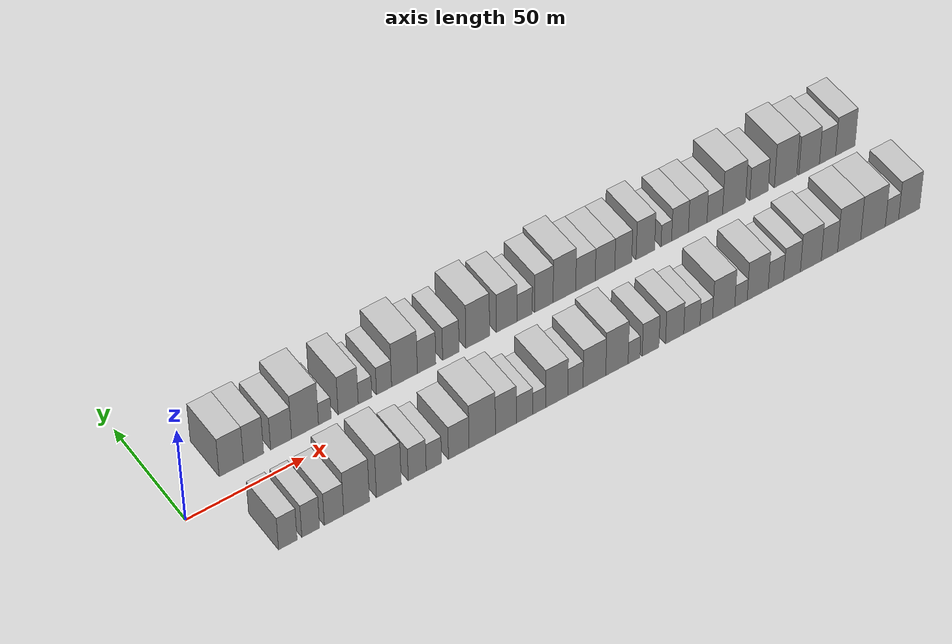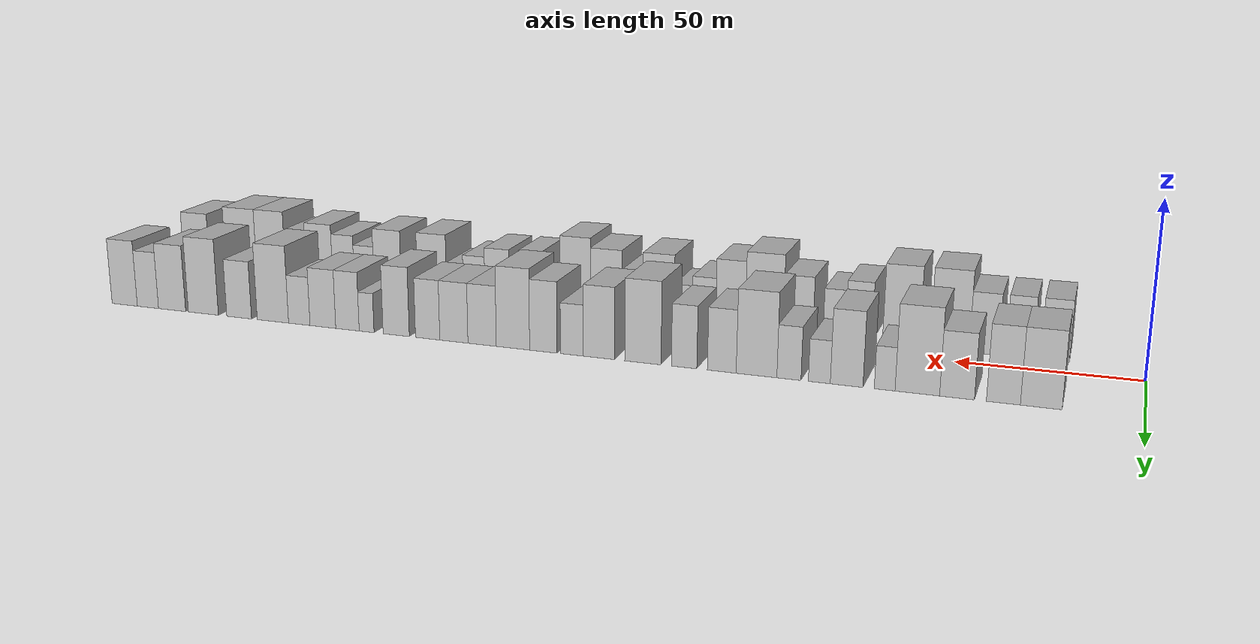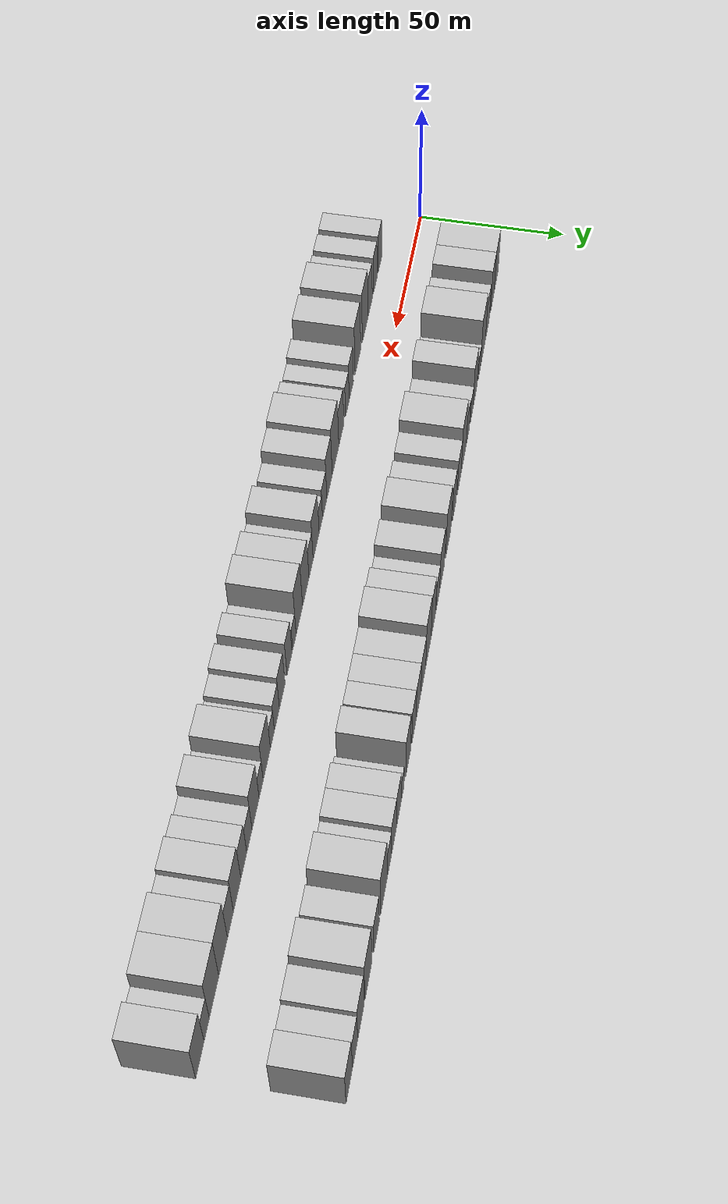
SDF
<sdf version="1.6">
 <world name="default">
  <scene>
   <sky><clouds><speed>12</speed></clouds></sky>
   <ambient>0.4 0.4 0.4 1</ambient>
   <background>0.7 0.7 0.7 1</background>
   <shadows>1</shadows>
  </scene>
  <gravity>0 0 -9.8066</gravity>
  <magnetic_field>6e-06 2.3e-05 -4.2e-05</magnetic_field>
  <physics default="0" name="default_physics" type="ode">
   <ode>
    <solver>
     <type>quick</type>
     <iters>10</iters>
     <sor>1.0</sor>
     <use_dynamic_moi_rescaling>0</use_dynamic_moi_rescaling>
    </solver>
    <constraints>
     <cfm>0</cfm>
     <erp>0.2</erp>
     <contact_max_correcting_vel>100</contact_max_correcting_vel>
     <contact_surface_layer>0.001</contact_surface_layer>
    </constraints>
   </ode>
   <max_step_size>0.004</max_step_size>
   <real_time_factor>1</real_time_factor>
   <real_time_update_rate>250</real_time_update_rate>
  </physics>
  <light name="sun" type="directional">
   <pose>0 0 10 0 0 0</pose>
   <diffuse>0.8 0.8 0.8 1</diffuse>
   <specular>0.2 0.2 0.2 1</specular>
   <attenuation>
    <range>1000</range>
    <constant>0.9</constant>
    <linear>0.01</linear>
    <quadratic>0.001</quadratic>
   </attenuation>
   <direction>-0.5 0.1 -0.9</direction>
  </light>
  <model name="building_1">
   <static>1</static>
   <pose>25.1516 20.0000 0 0.000000 0.000000 1.570796</pose>
   <link name="link">
    <pose>0 0 10.50 0 0 0</pose>
    <collision name="collision"><geometry><box><size>20.0000 10.3033 21.0000</size></box></geometry></collision>
    <visual name="visual">
     <cast_shadows>0</cast_shadows>
     <geometry><box><size>20.0000 10.3033 21.0000</size></box></geometry>
     <material>
      <script>
       <uri>model://HANNAS_wall/materials/scripts</uri>
       <uri>model://HANNAS_wall/materials/textures</uri>
       <name>vrc/HANNAS_wall</name>
      </script>
     </material>
    </visual>
   </link>
  </model>
  <model name="building_2">
   <static>1</static>
   <pose>34.5574 20.0000 0 0.000000 0.000000 1.570796</pose>
   <link name="link">
    <pose>0 0 10.50 0 0 0</pose>
    <collision name="collision"><geometry><box><size>20.0000 8.5082 21.0000</size></box></geometry></collision>
    <visual name="visual">
     <cast_shadows>0</cast_shadows>
     <geometry><box><size>20.0000 8.5082 21.0000</size></box></geometry>
     <material>
      <script>
       <uri>model://HANNAS_wall/materials/scripts</uri>
       <uri>model://HANNAS_wall/materials/textures</uri>
       <name>vrc/HANNAS_wall</name>
      </script>
     </material>
    </visual>
   </link>
  </model>
  <model name="building_3">
   <static>1</static>
   <pose>46.2636 20.0000 0 0.000000 0.000000 1.570796</pose>
   <link name="link">
    <pose>0 0 9.00 0 0 0</pose>
    <collision name="collision"><geometry><box><size>20.0000 8.9044 18.0000</size></box></geometry></collision>
    <visual name="visual">
     <cast_shadows>0</cast_shadows>
     <geometry><box><size>20.0000 8.9044 18.0000</size></box></geometry>
     <material>
      <script>
       <uri>model://HANNAS_wall/materials/scripts</uri>
       <uri>model://HANNAS_wall/materials/textures</uri>
       <name>vrc/HANNAS_wall</name>
      </script>
     </material>
    </visual>
   </link>
  </model>
  <model name="building_4">
   <static>1</static>
   <pose>56.4944 20.0000 0 0.000000 0.000000 1.570796</pose>
   <link name="link">
    <pose>0 0 12.00 0 0 0</pose>
    <collision name="collision"><geometry><box><size>20.0000 11.5572 24.0000</size></box></geometry></collision>
    <visual name="visual">
     <cast_shadows>0</cast_shadows>
     <geometry><box><size>20.0000 11.5572 24.0000</size></box></geometry>
     <material>
      <script>
       <uri>model://HANNAS_wall/materials/scripts</uri>
       <uri>model://HANNAS_wall/materials/textures</uri>
       <name>vrc/HANNAS_wall</name>
      </script>
     </material>
    </visual>
   </link>
  </model>
  <model name="building_5">
   <static>1</static>
   <pose>65.0011 20.0000 0 0.000000 0.000000 1.570796</pose>
   <link name="link">
    <pose>0 0 6.00 0 0 0</pose>
    <collision name="collision"><geometry><box><size>20.0000 5.4563 12.0000</size></box></geometry></collision>
    <visual name="visual">
     <cast_shadows>0</cast_shadows>
     <geometry><box><size>20.0000 5.4563 12.0000</size></box></geometry>
     <material>
      <script>
       <uri>model://HANNAS_wall/materials/scripts</uri>
       <uri>model://HANNAS_wall/materials/textures</uri>
       <name>vrc/HANNAS_wall</name>
      </script>
     </material>
    </visual>
   </link>
  </model>
  <model name="building_6">
   <static>1</static>
   <pose>75.0947 20.0000 0 0.000000 0.000000 1.570796</pose>
   <link name="link">
    <pose>0 0 10.50 0 0 0</pose>
    <collision name="collision"><geometry><box><size>20.0000 8.7310 21.0000</size></box></geometry></collision>
    <visual name="visual">
     <cast_shadows>0</cast_shadows>
     <geometry><box><size>20.0000 8.7310 21.0000</size></box></geometry>
     <material>
      <script>
       <uri>model://HANNAS_wall/materials/scripts</uri>
       <uri>model://HANNAS_wall/materials/textures</uri>
       <name>vrc/HANNAS_wall</name>
      </script>
     </material>
    </visual>
   </link>
  </model>
  <model name="building_7">
   <static>1</static>
   <pose>82.4263 20.0000 0 0.000000 0.000000 1.570796</pose>
   <link name="link">
    <pose>0 0 6.00 0 0 0</pose>
    <collision name="collision"><geometry><box><size>20.0000 5.9321 12.0000</size></box></geometry></collision>
    <visual name="visual">
     <cast_shadows>0</cast_shadows>
     <geometry><box><size>20.0000 5.9321 12.0000</size></box></geometry>
     <material>
      <script>
       <uri>model://HANNAS_wall/materials/scripts</uri>
       <uri>model://HANNAS_wall/materials/textures</uri>
       <name>vrc/HANNAS_wall</name>
      </script>
     </material>
    </visual>
   </link>
  </model>
  <model name="building_8">
   <static>1</static>
   <pose>90.7004 20.0000 0 0.000000 0.000000 1.570796</pose>
   <link name="link">
    <pose>0 0 7.50 0 0 0</pose>
    <collision name="collision"><geometry><box><size>20.0000 6.6161 15.0000</size></box></geometry></collision>
    <visual name="visual">
     <cast_shadows>0</cast_shadows>
     <geometry><box><size>20.0000 6.6161 15.0000</size></box></geometry>
     <material>
      <script>
       <uri>model://HANNAS_wall/materials/scripts</uri>
       <uri>model://HANNAS_wall/materials/textures</uri>
       <name>vrc/HANNAS_wall</name>
      </script>
     </material>
    </visual>
   </link>
  </model>
  <model name="building_9">
   <static>1</static>
   <pose>99.6663 20.0000 0 0.000000 0.000000 1.570796</pose>
   <link name="link">
    <pose>0 0 12.00 0 0 0</pose>
    <collision name="collision"><geometry><box><size>20.0000 11.3157 24.0000</size></box></geometry></collision>
    <visual name="visual">
     <cast_shadows>0</cast_shadows>
     <geometry><box><size>20.0000 11.3157 24.0000</size></box></geometry>
     <material>
      <script>
       <uri>model://HANNAS_wall/materials/scripts</uri>
       <uri>model://HANNAS_wall/materials/textures</uri>
       <name>vrc/HANNAS_wall</name>
      </script>
     </material>
    </visual>
   </link>
  </model>
  <model name="building_10">
   <static>1</static>
   <pose>109.3915 20.0000 0 0.000000 0.000000 1.570796</pose>
   <link name="link">
    <pose>0 0 9.00 0 0 0</pose>
    <collision name="collision"><geometry><box><size>20.0000 8.1346 18.0000</size></box></geometry></collision>
    <visual name="visual">
     <cast_shadows>0</cast_shadows>
     <geometry><box><size>20.0000 8.1346 18.0000</size></box></geometry>
     <material>
      <script>
       <uri>model://HANNAS_wall/materials/scripts</uri>
       <uri>model://HANNAS_wall/materials/textures</uri>
       <name>vrc/HANNAS_wall</name>
      </script>
     </material>
    </visual>
   </link>
  </model>
  <model name="building_11">
   <static>1</static>
   <pose>120.1102 20.0000 0 0.000000 0.000000 1.570796</pose>
   <link name="link">
    <pose>0 0 9.00 0 0 0</pose>
    <collision name="collision"><geometry><box><size>20.0000 7.3029 18.0000</size></box></geometry></collision>
    <visual name="visual">
     <cast_shadows>0</cast_shadows>
     <geometry><box><size>20.0000 7.3029 18.0000</size></box></geometry>
     <material>
      <script>
       <uri>model://HANNAS_wall/materials/scripts</uri>
       <uri>model://HANNAS_wall/materials/textures</uri>
       <name>vrc/HANNAS_wall</name>
      </script>
     </material>
    </visual>
   </link>
  </model>
  <model name="building_12">
   <static>1</static>
   <pose>132.0586 20.0000 0 0.000000 0.000000 1.570796</pose>
   <link name="link">
    <pose>0 0 12.00 0 0 0</pose>
    <collision name="collision"><geometry><box><size>20.0000 10.5938 24.0000</size></box></geometry></collision>
    <visual name="visual">
     <cast_shadows>0</cast_shadows>
     <geometry><box><size>20.0000 10.5938 24.0000</size></box></geometry>
     <material>
      <script>
       <uri>model://HANNAS_wall/materials/scripts</uri>
       <uri>model://HANNAS_wall/materials/textures</uri>
       <name>vrc/HANNAS_wall</name>
      </script>
     </material>
    </visual>
   </link>
  </model>
  <model name="building_13">
   <static>1</static>
   <pose>145.0110 20.0000 0 0.000000 0.000000 1.570796</pose>
   <link name="link">
    <pose>0 0 10.50 0 0 0</pose>
    <collision name="collision"><geometry><box><size>20.0000 9.3109 21.0000</size></box></geometry></collision>
    <visual name="visual">
     <cast_shadows>0</cast_shadows>
     <geometry><box><size>20.0000 9.3109 21.0000</size></box></geometry>
     <material>
      <script>
       <uri>model://HANNAS_wall/materials/scripts</uri>
       <uri>model://HANNAS_wall/materials/textures</uri>
       <name>vrc/HANNAS_wall</name>
      </script>
     </material>
    </visual>
   </link>
  </model>
  <model name="building_14">
   <static>1</static>
   <pose>153.1333 20.0000 0 0.000000 0.000000 1.570796</pose>
   <link name="link">
    <pose>0 0 7.50 0 0 0</pose>
    <collision name="collision"><geometry><box><size>20.0000 6.9338 15.0000</size></box></geometry></collision>
    <visual name="visual">
     <cast_shadows>0</cast_shadows>
     <geometry><box><size>20.0000 6.9338 15.0000</size></box></geometry>
     <material>
      <script>
       <uri>model://HANNAS_wall/materials/scripts</uri>
       <uri>model://HANNAS_wall/materials/textures</uri>
       <name>vrc/HANNAS_wall</name>
      </script>
     </material>
    </visual>
   </link>
  </model>
  <model name="building_15">
   <static>1</static>
   <pose>161.8040 20.0000 0 0.000000 0.000000 1.570796</pose>
   <link name="link">
    <pose>0 0 10.50 0 0 0</pose>
    <collision name="collision"><geometry><box><size>20.0000 8.4076 21.0000</size></box></geometry></collision>
    <visual name="visual">
     <cast_shadows>0</cast_shadows>
     <geometry><box><size>20.0000 8.4076 21.0000</size></box></geometry>
     <material>
      <script>
       <uri>model://HANNAS_wall/materials/scripts</uri>
       <uri>model://HANNAS_wall/materials/textures</uri>
       <name>vrc/HANNAS_wall</name>
      </script>
     </material>
    </visual>
   </link>
  </model>
  <model name="building_16">
   <static>1</static>
   <pose>171.1718 20.0000 0 0.000000 0.000000 1.570796</pose>
   <link name="link">
    <pose>0 0 12.00 0 0 0</pose>
    <collision name="collision"><geometry><box><size>20.0000 10.3281 24.0000</size></box></geometry></collision>
    <visual name="visual">
     <cast_shadows>0</cast_shadows>
     <geometry><box><size>20.0000 10.3281 24.0000</size></box></geometry>
     <material>
      <script>
       <uri>model://HANNAS_wall/materials/scripts</uri>
       <uri>model://HANNAS_wall/materials/textures</uri>
       <name>vrc/HANNAS_wall</name>
      </script>
     </material>
    </visual>
   </link>
  </model>
  <model name="building_17">
   <static>1</static>
   <pose>180.7952 20.0000 0 0.000000 0.000000 1.570796</pose>
   <link name="link">
    <pose>0 0 9.00 0 0 0</pose>
    <collision name="collision"><geometry><box><size>20.0000 8.9186 18.0000</size></box></geometry></collision>
    <visual name="visual">
     <cast_shadows>0</cast_shadows>
     <geometry><box><size>20.0000 8.9186 18.0000</size></box></geometry>
     <material>
      <script>
       <uri>model://HANNAS_wall/materials/scripts</uri>
       <uri>model://HANNAS_wall/materials/textures</uri>
       <name>vrc/HANNAS_wall</name>
      </script>
     </material>
    </visual>
   </link>
  </model>
  <model name="building_18">
   <static>1</static>
   <pose>189.7408 20.0000 0 0.000000 0.000000 1.570796</pose>
   <link name="link">
    <pose>0 0 9.00 0 0 0</pose>
    <collision name="collision"><geometry><box><size>20.0000 8.9726 18.0000</size></box></geometry></collision>
    <visual name="visual">
     <cast_shadows>0</cast_shadows>
     <geometry><box><size>20.0000 8.9726 18.0000</size></box></geometry>
     <material>
      <script>
       <uri>model://HANNAS_wall/materials/scripts</uri>
       <uri>model://HANNAS_wall/materials/textures</uri>
       <name>vrc/HANNAS_wall</name>
      </script>
     </material>
    </visual>
   </link>
  </model>
  <model name="building_19">
   <static>1</static>
   <pose>198.1437 20.0000 0 0.000000 0.000000 1.570796</pose>
   <link name="link">
    <pose>0 0 9.00 0 0 0</pose>
    <collision name="collision"><geometry><box><size>20.0000 7.8333 18.0000</size></box></geometry></collision>
    <visual name="visual">
     <cast_shadows>0</cast_shadows>
     <geometry><box><size>20.0000 7.8333 18.0000</size></box></geometry>
     <material>
      <script>
       <uri>model://HANNAS_wall/materials/scripts</uri>
       <uri>model://HANNAS_wall/materials/textures</uri>
       <name>vrc/HANNAS_wall</name>
      </script>
     </material>
    </visual>
   </link>
  </model>
  <model name="building_20">
   <static>1</static>
   <pose>208.3549 20.0000 0 0.000000 0.000000 1.570796</pose>
   <link name="link">
    <pose>0 0 10.50 0 0 0</pose>
    <collision name="collision"><geometry><box><size>20.0000 8.5891 21.0000</size></box></geometry></collision>
    <visual name="visual">
     <cast_shadows>0</cast_shadows>
     <geometry><box><size>20.0000 8.5891 21.0000</size></box></geometry>
     <material>
      <script>
       <uri>model://HANNAS_wall/materials/scripts</uri>
       <uri>model://HANNAS_wall/materials/textures</uri>
       <name>vrc/HANNAS_wall</name>
      </script>
     </material>
    </visual>
   </link>
  </model>
  <model name="building_21">
   <static>1</static>
   <pose>218.1163 20.0000 0 0.000000 0.000000 1.570796</pose>
   <link name="link">
    <pose>0 0 6.00 0 0 0</pose>
    <collision name="collision"><geometry><box><size>20.0000 4.9337 12.0000</size></box></geometry></collision>
    <visual name="visual">
     <cast_shadows>0</cast_shadows>
     <geometry><box><size>20.0000 4.9337 12.0000</size></box></geometry>
     <material>
      <script>
       <uri>model://HANNAS_wall/materials/scripts</uri>
       <uri>model://HANNAS_wall/materials/textures</uri>
       <name>vrc/HANNAS_wall</name>
      </script>
     </material>
    </visual>
   </link>
  </model>
  <model name="building_22">
   <static>1</static>
   <pose>224.5152 20.0000 0 0.000000 0.000000 1.570796</pose>
   <link name="link">
    <pose>0 0 9.00 0 0 0</pose>
    <collision name="collision"><geometry><box><size>20.0000 7.8642 18.0000</size></box></geometry></collision>
    <visual name="visual">
     <cast_shadows>0</cast_shadows>
     <geometry><box><size>20.0000 7.8642 18.0000</size></box></geometry>
     <material>
      <script>
       <uri>model://HANNAS_wall/materials/scripts</uri>
       <uri>model://HANNAS_wall/materials/textures</uri>
       <name>vrc/HANNAS_wall</name>
      </script>
     </material>
    </visual>
   </link>
  </model>
  <model name="building_23">
   <static>1</static>
   <pose>232.8145 20.0000 0 0.000000 0.000000 1.570796</pose>
   <link name="link">
    <pose>0 0 9.00 0 0 0</pose>
    <collision name="collision"><geometry><box><size>20.0000 8.7344 18.0000</size></box></geometry></collision>
    <visual name="visual">
     <cast_shadows>0</cast_shadows>
     <geometry><box><size>20.0000 8.7344 18.0000</size></box></geometry>
     <material>
      <script>
       <uri>model://HANNAS_wall/materials/scripts</uri>
       <uri>model://HANNAS_wall/materials/textures</uri>
       <name>vrc/HANNAS_wall</name>
      </script>
     </material>
    </visual>
   </link>
  </model>
  <model name="building_24">
   <static>1</static>
   <pose>240.8632 20.0000 0 0.000000 0.000000 1.570796</pose>
   <link name="link">
    <pose>0 0 7.50 0 0 0</pose>
    <collision name="collision"><geometry><box><size>20.0000 7.3629 15.0000</size></box></geometry></collision>
    <visual name="visual">
     <cast_shadows>0</cast_shadows>
     <geometry><box><size>20.0000 7.3629 15.0000</size></box></geometry>
     <material>
      <script>
       <uri>model://HANNAS_wall/materials/scripts</uri>
       <uri>model://HANNAS_wall/materials/textures</uri>
       <name>vrc/HANNAS_wall</name>
      </script>
     </material>
    </visual>
   </link>
  </model>
  <model name="building_25">
   <static>1</static>
   <pose>249.9842 20.0000 0 0.000000 0.000000 1.570796</pose>
   <link name="link">
    <pose>0 0 12.00 0 0 0</pose>
    <collision name="collision"><geometry><box><size>20.0000 10.8793 24.0000</size></box></geometry></collision>
    <visual name="visual">
     <cast_shadows>0</cast_shadows>
     <geometry><box><size>20.0000 10.8793 24.0000</size></box></geometry>
     <material>
      <script>
       <uri>model://HANNAS_wall/materials/scripts</uri>
       <uri>model://HANNAS_wall/materials/textures</uri>
       <name>vrc/HANNAS_wall</name>
      </script>
     </material>
    </visual>
   </link>
  </model>
  <model name="building_26">
   <static>1</static>
   <pose>261.8048 20.0000 0 0.000000 0.000000 1.570796</pose>
   <link name="link">
    <pose>0 0 9.00 0 0 0</pose>
    <collision name="collision"><geometry><box><size>20.0000 8.7619 18.0000</size></box></geometry></collision>
    <visual name="visual">
     <cast_shadows>0</cast_shadows>
     <geometry><box><size>20.0000 8.7619 18.0000</size></box></geometry>
     <material>
      <script>
       <uri>model://HANNAS_wall/materials/scripts</uri>
       <uri>model://HANNAS_wall/materials/textures</uri>
       <name>vrc/HANNAS_wall</name>
      </script>
     </material>
    </visual>
   </link>
  </model>
  <model name="building_27">
   <static>1</static>
   <pose>274.5712 20.0000 0 0.000000 0.000000 1.570796</pose>
   <link name="link">
    <pose>0 0 12.00 0 0 0</pose>
    <collision name="collision"><geometry><box><size>20.0000 10.7709 24.0000</size></box></geometry></collision>
    <visual name="visual">
     <cast_shadows>0</cast_shadows>
     <geometry><box><size>20.0000 10.7709 24.0000</size></box></geometry>
     <material>
      <script>
       <uri>model://HANNAS_wall/materials/scripts</uri>
       <uri>model://HANNAS_wall/materials/textures</uri>
       <name>vrc/HANNAS_wall</name>
      </script>
     </material>
    </visual>
   </link>
  </model>
  <model name="building_28">
   <static>1</static>
   <pose>285.9206 20.0000 0 0.000000 0.000000 1.570796</pose>
   <link name="link">
    <pose>0 0 10.50 0 0 0</pose>
    <collision name="collision"><geometry><box><size>20.0000 9.9280 21.0000</size></box></geometry></collision>
    <visual name="visual">
     <cast_shadows>0</cast_shadows>
     <geometry><box><size>20.0000 9.9280 21.0000</size></box></geometry>
     <material>
      <script>
       <uri>model://HANNAS_wall/materials/scripts</uri>
       <uri>model://HANNAS_wall/materials/textures</uri>
       <name>vrc/HANNAS_wall</name>
      </script>
     </material>
    </visual>
   </link>
  </model>
  <model name="building_29">
   <static>1</static>
   <pose>294.7935 20.0000 0 0.000000 0.000000 1.570796</pose>
   <link name="link">
    <pose>0 0 9.00 0 0 0</pose>
    <collision name="collision"><geometry><box><size>20.0000 7.8178 18.0000</size></box></geometry></collision>
    <visual name="visual">
     <cast_shadows>0</cast_shadows>
     <geometry><box><size>20.0000 7.8178 18.0000</size></box></geometry>
     <material>
      <script>
       <uri>model://HANNAS_wall/materials/scripts</uri>
       <uri>model://HANNAS_wall/materials/textures</uri>
       <name>vrc/HANNAS_wall</name>
      </script>
     </material>
    </visual>
   </link>
  </model>
  <model name="building_30">
   <static>1</static>
   <pose>303.4305 20.0000 0 0.000000 0.000000 1.570796</pose>
   <link name="link">
    <pose>0 0 10.50 0 0 0</pose>
    <collision name="collision"><geometry><box><size>20.0000 9.4562 21.0000</size></box></geometry></collision>
    <visual name="visual">
     <cast_shadows>0</cast_shadows>
     <geometry><box><size>20.0000 9.4562 21.0000</size></box></geometry>
     <material>
      <script>
       <uri>model://HANNAS_wall/materials/scripts</uri>
       <uri>model://HANNAS_wall/materials/textures</uri>
       <name>vrc/HANNAS_wall</name>
      </script>
     </material>
    </visual>
   </link>
  </model>
  <model name="building_31">
   <static>1</static>
   <pose>23.8754 -20.0000 0 0.000000 0.000000 1.570796</pose>
   <link name="link">
    <pose>0 0 9.00 0 0 0</pose>
    <collision name="collision"><geometry><box><size>20.0000 7.7508 18.0000</size></box></geometry></collision>
    <visual name="visual">
     <cast_shadows>0</cast_shadows>
     <geometry><box><size>20.0000 7.7508 18.0000</size></box></geometry>
     <material>
      <script>
       <uri>model://HANNAS_wall/materials/scripts</uri>
       <uri>model://HANNAS_wall/materials/textures</uri>
       <name>vrc/HANNAS_wall</name>
      </script>
     </material>
    </visual>
   </link>
  </model>
  <model name="building_32">
   <static>1</static>
   <pose>33.4830 -20.0000 0 0.000000 0.000000 1.570796</pose>
   <link name="link">
    <pose>0 0 9.00 0 0 0</pose>
    <collision name="collision"><geometry><box><size>20.0000 7.4644 18.0000</size></box></geometry></collision>
    <visual name="visual">
     <cast_shadows>0</cast_shadows>
     <geometry><box><size>20.0000 7.4644 18.0000</size></box></geometry>
     <material>
      <script>
       <uri>model://HANNAS_wall/materials/scripts</uri>
       <uri>model://HANNAS_wall/materials/textures</uri>
       <name>vrc/HANNAS_wall</name>
      </script>
     </material>
    </visual>
   </link>
  </model>
  <model name="building_33">
   <static>1</static>
   <pose>43.2879 -20.0000 0 0.000000 0.000000 1.570796</pose>
   <link name="link">
    <pose>0 0 9.00 0 0 0</pose>
    <collision name="collision"><geometry><box><size>20.0000 8.1454 18.0000</size></box></geometry></collision>
    <visual name="visual">
     <cast_shadows>0</cast_shadows>
     <geometry><box><size>20.0000 8.1454 18.0000</size></box></geometry>
     <material>
      <script>
       <uri>model://HANNAS_wall/materials/scripts</uri>
       <uri>model://HANNAS_wall/materials/textures</uri>
       <name>vrc/HANNAS_wall</name>
      </script>
     </material>
    </visual>
   </link>
  </model>
  <model name="building_34">
   <static>1</static>
   <pose>52.8335 -20.0000 0 0.000000 0.000000 1.570796</pose>
   <link name="link">
    <pose>0 0 12.00 0 0 0</pose>
    <collision name="collision"><geometry><box><size>20.0000 10.9457 24.0000</size></box></geometry></collision>
    <visual name="visual">
     <cast_shadows>0</cast_shadows>
     <geometry><box><size>20.0000 10.9457 24.0000</size></box></geometry>
     <material>
      <script>
       <uri>model://HANNAS_wall/materials/scripts</uri>
       <uri>model://HANNAS_wall/materials/textures</uri>
       <name>vrc/HANNAS_wall</name>
      </script>
     </material>
    </visual>
   </link>
  </model>
  <model name="building_35">
   <static>1</static>
   <pose>66.6143 -20.0000 0 0.000000 0.000000 1.570796</pose>
   <link name="link">
    <pose>0 0 12.00 0 0 0</pose>
    <collision name="collision"><geometry><box><size>20.0000 10.6161 24.0000</size></box></geometry></collision>
    <visual name="visual">
     <cast_shadows>0</cast_shadows>
     <geometry><box><size>20.0000 10.6161 24.0000</size></box></geometry>
     <material>
      <script>
       <uri>model://HANNAS_wall/materials/scripts</uri>
       <uri>model://HANNAS_wall/materials/textures</uri>
       <name>vrc/HANNAS_wall</name>
      </script>
     </material>
    </visual>
   </link>
  </model>
  <model name="building_36">
   <static>1</static>
   <pose>78.7757 -20.0000 0 0.000000 0.000000 1.570796</pose>
   <link name="link">
    <pose>0 0 9.00 0 0 0</pose>
    <collision name="collision"><geometry><box><size>20.0000 7.7067 18.0000</size></box></geometry></collision>
    <visual name="visual">
     <cast_shadows>0</cast_shadows>
     <geometry><box><size>20.0000 7.7067 18.0000</size></box></geometry>
     <material>
      <script>
       <uri>model://HANNAS_wall/materials/scripts</uri>
       <uri>model://HANNAS_wall/materials/textures</uri>
       <name>vrc/HANNAS_wall</name>
      </script>
     </material>
    </visual>
   </link>
  </model>
  <model name="building_37">
   <static>1</static>
   <pose>85.9521 -20.0000 0 0.000000 0.000000 1.570796</pose>
   <link name="link">
    <pose>0 0 7.50 0 0 0</pose>
    <collision name="collision"><geometry><box><size>20.0000 6.6461 15.0000</size></box></geometry></collision>
    <visual name="visual">
     <cast_shadows>0</cast_shadows>
     <geometry><box><size>20.0000 6.6461 15.0000</size></box></geometry>
     <material>
      <script>
       <uri>model://HANNAS_wall/materials/scripts</uri>
       <uri>model://HANNAS_wall/materials/textures</uri>
       <name>vrc/HANNAS_wall</name>
      </script>
     </material>
    </visual>
   </link>
  </model>
  <model name="building_38">
   <static>1</static>
   <pose>96.7349 -20.0000 0 0.000000 0.000000 1.570796</pose>
   <link name="link">
    <pose>0 0 9.00 0 0 0</pose>
    <collision name="collision"><geometry><box><size>20.0000 8.9194 18.0000</size></box></geometry></collision>
    <visual name="visual">
     <cast_shadows>0</cast_shadows>
     <geometry><box><size>20.0000 8.9194 18.0000</size></box></geometry>
     <material>
      <script>
       <uri>model://HANNAS_wall/materials/scripts</uri>
       <uri>model://HANNAS_wall/materials/textures</uri>
       <name>vrc/HANNAS_wall</name>
      </script>
     </material>
    </visual>
   </link>
  </model>
  <model name="building_39">
   <static>1</static>
   <pose>106.9634 -20.0000 0 0.000000 0.000000 1.570796</pose>
   <link name="link">
    <pose>0 0 12.00 0 0 0</pose>
    <collision name="collision"><geometry><box><size>20.0000 11.5376 24.0000</size></box></geometry></collision>
    <visual name="visual">
     <cast_shadows>0</cast_shadows>
     <geometry><box><size>20.0000 11.5376 24.0000</size></box></geometry>
     <material>
      <script>
       <uri>model://HANNAS_wall/materials/scripts</uri>
       <uri>model://HANNAS_wall/materials/textures</uri>
       <name>vrc/HANNAS_wall</name>
      </script>
     </material>
    </visual>
   </link>
  </model>
  <model name="building_40">
   <static>1</static>
   <pose>117.2885 -20.0000 0 0.000000 0.000000 1.570796</pose>
   <link name="link">
    <pose>0 0 10.50 0 0 0</pose>
    <collision name="collision"><geometry><box><size>20.0000 9.1125 21.0000</size></box></geometry></collision>
    <visual name="visual">
     <cast_shadows>0</cast_shadows>
     <geometry><box><size>20.0000 9.1125 21.0000</size></box></geometry>
     <material>
      <script>
       <uri>model://HANNAS_wall/materials/scripts</uri>
       <uri>model://HANNAS_wall/materials/textures</uri>
       <name>vrc/HANNAS_wall</name>
      </script>
     </material>
    </visual>
   </link>
  </model>
  <model name="building_41">
   <static>1</static>
   <pose>125.5029 -20.0000 0 0.000000 0.000000 1.570796</pose>
   <link name="link">
    <pose>0 0 7.50 0 0 0</pose>
    <collision name="collision"><geometry><box><size>20.0000 7.3164 15.0000</size></box></geometry></collision>
    <visual name="visual">
     <cast_shadows>0</cast_shadows>
     <geometry><box><size>20.0000 7.3164 15.0000</size></box></geometry>
     <material>
      <script>
       <uri>model://HANNAS_wall/materials/scripts</uri>
       <uri>model://HANNAS_wall/materials/textures</uri>
       <name>vrc/HANNAS_wall</name>
      </script>
     </material>
    </visual>
   </link>
  </model>
  <model name="building_42">
   <static>1</static>
   <pose>131.9861 -20.0000 0 0.000000 0.000000 1.570796</pose>
   <link name="link">
    <pose>0 0 6.00 0 0 0</pose>
    <collision name="collision"><geometry><box><size>20.0000 5.6499 12.0000</size></box></geometry></collision>
    <visual name="visual">
     <cast_shadows>0</cast_shadows>
     <geometry><box><size>20.0000 5.6499 12.0000</size></box></geometry>
     <material>
      <script>
       <uri>model://HANNAS_wall/materials/scripts</uri>
       <uri>model://HANNAS_wall/materials/textures</uri>
       <name>vrc/HANNAS_wall</name>
      </script>
     </material>
    </visual>
   </link>
  </model>
  <model name="building_43">
   <static>1</static>
   <pose>139.7798 -20.0000 0 0.000000 0.000000 1.570796</pose>
   <link name="link">
    <pose>0 0 10.50 0 0 0</pose>
    <collision name="collision"><geometry><box><size>20.0000 9.9375 21.0000</size></box></geometry></collision>
    <visual name="visual">
     <cast_shadows>0</cast_shadows>
     <geometry><box><size>20.0000 9.9375 21.0000</size></box></geometry>
     <material>
      <script>
       <uri>model://HANNAS_wall/materials/scripts</uri>
       <uri>model://HANNAS_wall/materials/textures</uri>
       <name>vrc/HANNAS_wall</name>
      </script>
     </material>
    </visual>
   </link>
  </model>
  <model name="building_44">
   <static>1</static>
   <pose>148.1220 -20.0000 0 0.000000 0.000000 1.570796</pose>
   <link name="link">
    <pose>0 0 7.50 0 0 0</pose>
    <collision name="collision"><geometry><box><size>20.0000 6.7470 15.0000</size></box></geometry></collision>
    <visual name="visual">
     <cast_shadows>0</cast_shadows>
     <geometry><box><size>20.0000 6.7470 15.0000</size></box></geometry>
     <material>
      <script>
       <uri>model://HANNAS_wall/materials/scripts</uri>
       <uri>model://HANNAS_wall/materials/textures</uri>
       <name>vrc/HANNAS_wall</name>
      </script>
     </material>
    </visual>
   </link>
  </model>
  <model name="building_45">
   <static>1</static>
   <pose>156.6059 -20.0000 0 0.000000 0.000000 1.570796</pose>
   <link name="link">
    <pose>0 0 10.50 0 0 0</pose>
    <collision name="collision"><geometry><box><size>20.0000 10.2208 21.0000</size></box></geometry></collision>
    <visual name="visual">
     <cast_shadows>0</cast_shadows>
     <geometry><box><size>20.0000 10.2208 21.0000</size></box></geometry>
     <material>
      <script>
       <uri>model://HANNAS_wall/materials/scripts</uri>
       <uri>model://HANNAS_wall/materials/textures</uri>
       <name>vrc/HANNAS_wall</name>
      </script>
     </material>
    </visual>
   </link>
  </model>
  <model name="building_46">
   <static>1</static>
   <pose>166.7558 -20.0000 0 0.000000 0.000000 1.570796</pose>
   <link name="link">
    <pose>0 0 12.00 0 0 0</pose>
    <collision name="collision"><geometry><box><size>20.0000 10.0789 24.0000</size></box></geometry></collision>
    <visual name="visual">
     <cast_shadows>0</cast_shadows>
     <geometry><box><size>20.0000 10.0789 24.0000</size></box></geometry>
     <material>
      <script>
       <uri>model://HANNAS_wall/materials/scripts</uri>
       <uri>model://HANNAS_wall/materials/textures</uri>
       <name>vrc/HANNAS_wall</name>
      </script>
     </material>
    </visual>
   </link>
  </model>
  <model name="building_47">
   <static>1</static>
   <pose>174.4855 -20.0000 0 0.000000 0.000000 1.570796</pose>
   <link name="link">
    <pose>0 0 6.00 0 0 0</pose>
    <collision name="collision"><geometry><box><size>20.0000 5.3806 12.0000</size></box></geometry></collision>
    <visual name="visual">
     <cast_shadows>0</cast_shadows>
     <geometry><box><size>20.0000 5.3806 12.0000</size></box></geometry>
     <material>
      <script>
       <uri>model://HANNAS_wall/materials/scripts</uri>
       <uri>model://HANNAS_wall/materials/textures</uri>
       <name>vrc/HANNAS_wall</name>
      </script>
     </material>
    </visual>
   </link>
  </model>
  <model name="building_48">
   <static>1</static>
   <pose>181.9816 -20.0000 0 0.000000 0.000000 1.570796</pose>
   <link name="link">
    <pose>0 0 9.00 0 0 0</pose>
    <collision name="collision"><geometry><box><size>20.0000 7.6115 18.0000</size></box></geometry></collision>
    <visual name="visual">
     <cast_shadows>0</cast_shadows>
     <geometry><box><size>20.0000 7.6115 18.0000</size></box></geometry>
     <material>
      <script>
       <uri>model://HANNAS_wall/materials/scripts</uri>
       <uri>model://HANNAS_wall/materials/textures</uri>
       <name>vrc/HANNAS_wall</name>
      </script>
     </material>
    </visual>
   </link>
  </model>
  <model name="building_49">
   <static>1</static>
   <pose>192.9435 -20.0000 0 0.000000 0.000000 1.570796</pose>
   <link name="link">
    <pose>0 0 9.00 0 0 0</pose>
    <collision name="collision"><geometry><box><size>20.0000 8.3123 18.0000</size></box></geometry></collision>
    <visual name="visual">
     <cast_shadows>0</cast_shadows>
     <geometry><box><size>20.0000 8.3123 18.0000</size></box></geometry>
     <material>
      <script>
       <uri>model://HANNAS_wall/materials/scripts</uri>
       <uri>model://HANNAS_wall/materials/textures</uri>
       <name>vrc/HANNAS_wall</name>
      </script>
     </material>
    </visual>
   </link>
  </model>
  <model name="building_50">
   <static>1</static>
   <pose>200.8339 -20.0000 0 0.000000 0.000000 1.570796</pose>
   <link name="link">
    <pose>0 0 7.50 0 0 0</pose>
    <collision name="collision"><geometry><box><size>20.0000 7.4687 15.0000</size></box></geometry></collision>
    <visual name="visual">
     <cast_shadows>0</cast_shadows>
     <geometry><box><size>20.0000 7.4687 15.0000</size></box></geometry>
     <material>
      <script>
       <uri>model://HANNAS_wall/materials/scripts</uri>
       <uri>model://HANNAS_wall/materials/textures</uri>
       <name>vrc/HANNAS_wall</name>
      </script>
     </material>
    </visual>
   </link>
  </model>
  <model name="building_51">
   <static>1</static>
   <pose>207.4762 -20.0000 0 0.000000 0.000000 1.570796</pose>
   <link name="link">
    <pose>0 0 6.00 0 0 0</pose>
    <collision name="collision"><geometry><box><size>20.0000 5.8159 12.0000</size></box></geometry></collision>
    <visual name="visual">
     <cast_shadows>0</cast_shadows>
     <geometry><box><size>20.0000 5.8159 12.0000</size></box></geometry>
     <material>
      <script>
       <uri>model://HANNAS_wall/materials/scripts</uri>
       <uri>model://HANNAS_wall/materials/textures</uri>
       <name>vrc/HANNAS_wall</name>
      </script>
     </material>
    </visual>
   </link>
  </model>
  <model name="building_52">
   <static>1</static>
   <pose>215.5154 -20.0000 0 0.000000 0.000000 1.570796</pose>
   <link name="link">
    <pose>0 0 10.50 0 0 0</pose>
    <collision name="collision"><geometry><box><size>20.0000 10.2626 21.0000</size></box></geometry></collision>
    <visual name="visual">
     <cast_shadows>0</cast_shadows>
     <geometry><box><size>20.0000 10.2626 21.0000</size></box></geometry>
     <material>
      <script>
       <uri>model://HANNAS_wall/materials/scripts</uri>
       <uri>model://HANNAS_wall/materials/textures</uri>
       <name>vrc/HANNAS_wall</name>
      </script>
     </material>
    </visual>
   </link>
  </model>
  <model name="building_53">
   <static>1</static>
   <pose>223.5206 -20.0000 0 0.000000 0.000000 1.570796</pose>
   <link name="link">
    <pose>0 0 6.00 0 0 0</pose>
    <collision name="collision"><geometry><box><size>20.0000 5.7479 12.0000</size></box></geometry></collision>
    <visual name="visual">
     <cast_shadows>0</cast_shadows>
     <geometry><box><size>20.0000 5.7479 12.0000</size></box></geometry>
     <material>
      <script>
       <uri>model://HANNAS_wall/materials/scripts</uri>
       <uri>model://HANNAS_wall/materials/textures</uri>
       <name>vrc/HANNAS_wall</name>
      </script>
     </material>
    </visual>
   </link>
  </model>
  <model name="building_54">
   <static>1</static>
   <pose>231.3027 -20.0000 0 0.000000 0.000000 1.570796</pose>
   <link name="link">
    <pose>0 0 10.50 0 0 0</pose>
    <collision name="collision"><geometry><box><size>20.0000 9.8162 21.0000</size></box></geometry></collision>
    <visual name="visual">
     <cast_shadows>0</cast_shadows>
     <geometry><box><size>20.0000 9.8162 21.0000</size></box></geometry>
     <material>
      <script>
       <uri>model://HANNAS_wall/materials/scripts</uri>
       <uri>model://HANNAS_wall/materials/textures</uri>
       <name>vrc/HANNAS_wall</name>
      </script>
     </material>
    </visual>
   </link>
  </model>
  <model name="building_55">
   <static>1</static>
   <pose>239.8067 -20.0000 0 0.000000 0.000000 1.570796</pose>
   <link name="link">
    <pose>0 0 7.50 0 0 0</pose>
    <collision name="collision"><geometry><box><size>20.0000 7.1918 15.0000</size></box></geometry></collision>
    <visual name="visual">
     <cast_shadows>0</cast_shadows>
     <geometry><box><size>20.0000 7.1918 15.0000</size></box></geometry>
     <material>
      <script>
       <uri>model://HANNAS_wall/materials/scripts</uri>
       <uri>model://HANNAS_wall/materials/textures</uri>
       <name>vrc/HANNAS_wall</name>
      </script>
     </material>
    </visual>
   </link>
  </model>
  <model name="building_56">
   <static>1</static>
   <pose>247.3651 -20.0000 0 0.000000 0.000000 1.570796</pose>
   <link name="link">
    <pose>0 0 9.00 0 0 0</pose>
    <collision name="collision"><geometry><box><size>20.0000 7.9251 18.0000</size></box></geometry></collision>
    <visual name="visual">
     <cast_shadows>0</cast_shadows>
     <geometry><box><size>20.0000 7.9251 18.0000</size></box></geometry>
     <material>
      <script>
       <uri>model://HANNAS_wall/materials/scripts</uri>
       <uri>model://HANNAS_wall/materials/textures</uri>
       <name>vrc/HANNAS_wall</name>
      </script>
     </material>
    </visual>
   </link>
  </model>
  <model name="building_57">
   <static>1</static>
   <pose>256.2565 -20.0000 0 0.000000 0.000000 1.570796</pose>
   <link name="link">
    <pose>0 0 10.50 0 0 0</pose>
    <collision name="collision"><geometry><box><size>20.0000 9.8577 21.0000</size></box></geometry></collision>
    <visual name="visual">
     <cast_shadows>0</cast_shadows>
     <geometry><box><size>20.0000 9.8577 21.0000</size></box></geometry>
     <material>
      <script>
       <uri>model://HANNAS_wall/materials/scripts</uri>
       <uri>model://HANNAS_wall/materials/textures</uri>
       <name>vrc/HANNAS_wall</name>
      </script>
     </material>
    </visual>
   </link>
  </model>
  <model name="building_58">
   <static>1</static>
   <pose>265.0481 -20.0000 0 0.000000 0.000000 1.570796</pose>
   <link name="link">
    <pose>0 0 9.00 0 0 0</pose>
    <collision name="collision"><geometry><box><size>20.0000 7.7253 18.0000</size></box></geometry></collision>
    <visual name="visual">
     <cast_shadows>0</cast_shadows>
     <geometry><box><size>20.0000 7.7253 18.0000</size></box></geometry>
     <material>
      <script>
       <uri>model://HANNAS_wall/materials/scripts</uri>
       <uri>model://HANNAS_wall/materials/textures</uri>
       <name>vrc/HANNAS_wall</name>
      </script>
     </material>
    </visual>
   </link>
  </model>
  <model name="building_59">
   <static>1</static>
   <pose>274.4085 -20.0000 0 0.000000 0.000000 1.570796</pose>
   <link name="link">
    <pose>0 0 12.00 0 0 0</pose>
    <collision name="collision"><geometry><box><size>20.0000 10.9956 24.0000</size></box></geometry></collision>
    <visual name="visual">
     <cast_shadows>0</cast_shadows>
     <geometry><box><size>20.0000 10.9956 24.0000</size></box></geometry>
     <material>
      <script>
       <uri>model://HANNAS_wall/materials/scripts</uri>
       <uri>model://HANNAS_wall/materials/textures</uri>
       <name>vrc/HANNAS_wall</name>
      </script>
     </material>
    </visual>
   </link>
  </model>
  <model name="building_60">
   <static>1</static>
   <pose>285.8106 -20.0000 0 0.000000 0.000000 1.570796</pose>
   <link name="link">
    <pose>0 0 12.00 0 0 0</pose>
    <collision name="collision"><geometry><box><size>20.0000 11.8087 24.0000</size></box></geometry></collision>
    <visual name="visual">
     <cast_shadows>0</cast_shadows>
     <geometry><box><size>20.0000 11.8087 24.0000</size></box></geometry>
     <material>
      <script>
       <uri>model://HANNAS_wall/materials/scripts</uri>
       <uri>model://HANNAS_wall/materials/textures</uri>
       <name>vrc/HANNAS_wall</name>
      </script>
     </material>
    </visual>
   </link>
  </model>
  <model name="building_61">
   <static>1</static>
   <pose>294.9282 -20.0000 0 0.000000 0.000000 1.570796</pose>
   <link name="link">
    <pose>0 0 7.50 0 0 0</pose>
    <collision name="collision"><geometry><box><size>20.0000 6.4265 15.0000</size></box></geometry></collision>
    <visual name="visual">
     <cast_shadows>0</cast_shadows>
     <geometry><box><size>20.0000 6.4265 15.0000</size></box></geometry>
     <material>
      <script>
       <uri>model://HANNAS_wall/materials/scripts</uri>
       <uri>model://HANNAS_wall/materials/textures</uri>
       <name>vrc/HANNAS_wall</name>
      </script>
     </material>
    </visual>
   </link>
  </model>
  <model name="building_62">
   <static>1</static>
   <pose>303.2025 -20.0000 0 0.000000 0.000000 1.570796</pose>
   <link name="link">
    <pose>0 0 10.50 0 0 0</pose>
    <collision name="collision"><geometry><box><size>20.0000 10.1220 21.0000</size></box></geometry></collision>
    <visual name="visual">
     <cast_shadows>0</cast_shadows>
     <geometry><box><size>20.0000 10.1220 21.0000</size></box></geometry>
     <material>
      <script>
       <uri>model://HANNAS_wall/materials/scripts</uri>
       <uri>model://HANNAS_wall/materials/textures</uri>
       <name>vrc/HANNAS_wall</name>
      </script>
     </material>
    </visual>
   </link>
  </model>
 </world>
</sdf>
